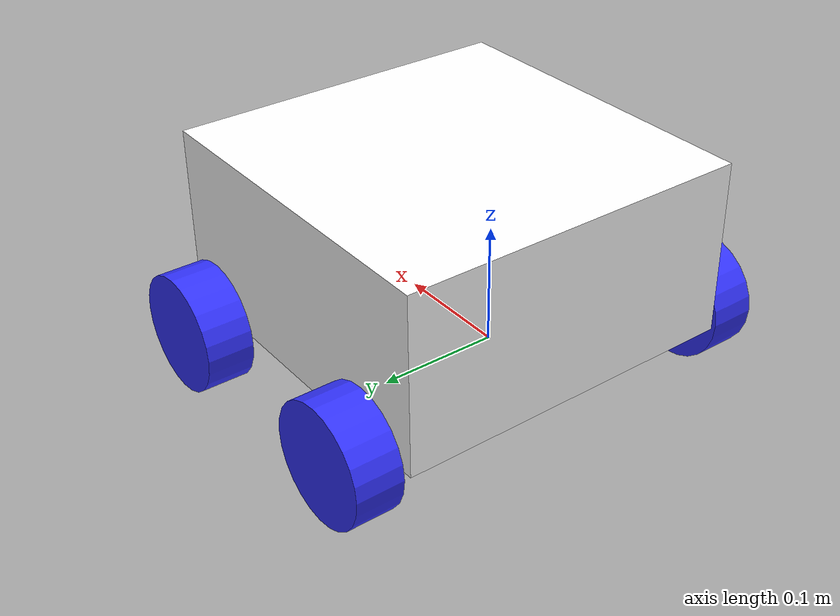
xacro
<?xml version="1.0"?>
<robot xmlns:xacro="http://www.ros.org/wiki/xacro" >

    <xacro:include filename="inertial_macros.xacro" />

    <material name="white">
        <color rgba="1 1 1 1" />
    </material>

    <material name="orange">
        <color rgba="1 0.3 0.1 1"/>
    </material>

    <material name="blue">
        <color rgba="0.2 0.2 1 1"/>
    </material>

    <material name="black">
        <color rgba="0 0 0 1"/>
    </material>

    <!--BASE LINK-->

    <link name="base_link">

    </link>

    <!--CHASSIS lINK-->

    <joint name="chassis_joint" type="fixed">
        <parent link="base_link"/>
        <child link="chassis"/>
        <origin xyz="-0.1 0 0"/>
    </joint>

    <link name="chassis">
        <visual>
            <origin xyz="0.15 0 0.075"/>
            <geometry>
                <box size="0.3 0.3 0.15"/>
            </geometry>
            <material name="white"/>
        </visual>
        <collision>
            <origin xyz="0.15 0 0.075"/>
            <geometry>
                <box size="0.3 0.3 0.15"/>
            </geometry>
        </collision>
        <xacro:inertial_box mass="0.5" x="0.3" y="0.3" z="0.15">
            <origin xyz="0.15 0 0.075" rpy="0 0 0"/>
        </xacro:inertial_box>
    </link>

    <!--LEFT WHEEL LINK-->
    <joint name="left_wheel_joint1" type="continuous">
        <parent link="base_link"/>
        <child link="left_wheel1"/>
        <origin xyz="-0.05 0.175 0" rpy="-${pi/2} 0 0"/>
        <axis xyz="0 0 1"/>
    </joint>

    <link name="left_wheel1">
        <visual>
            <geometry>
                <cylinder radius="0.05" length="0.04"/>
            </geometry>
            <material name="blue"/>
        </visual>
        <collision>
            <geometry>
                <cylinder radius="0.05" length="0.04"/>
            </geometry>
        </collision>
        <xacro:inertial_cylinder mass="0.1" length="0.04" radius="0.05">
            <origin xyz="0 0 0" rpy="0 0 0"/>
        </xacro:inertial_cylinder>
    </link>

        <!--RIGHT WHEEL LINK-->
    <joint name="right_wheel_joint1" type="continuous">
        <parent link="base_link"/>
        <child link="right_wheel1"/>
        <origin xyz="-0.05 -0.175 0" rpy="${pi/2} 0 0"/>
        <axis xyz="0 0 -1"/>
    </joint>

    <link name="right_wheel1">
        <visual>
            <geometry>
                <cylinder radius="0.05" length="0.04"/>
            </geometry>
            <material name="blue"/>
        </visual>
        <collision>
            <geometry>
                <cylinder radius="0.05" length="0.04"/>
            </geometry>
        </collision>
        <xacro:inertial_cylinder mass="0.1" length="0.04" radius="0.05">
            <origin xyz="0 0 0" rpy="0 0 0"/>
        </xacro:inertial_cylinder>
    </link>

    <!--2nd SET OF WHEEL LINKS-->

    <!--LEFT WHEEL LINK-->
    <joint name="left_wheel_joint2" type="continuous">
        <parent link="base_link"/>
        <child link="left_wheel2"/>
        <origin xyz="0.155 0.175 0" rpy="-${pi/2} 0 0"/>
        <axis xyz="0 0 1"/>
    </joint>

    <link name="left_wheel2">
        <visual>
            <geometry>
                <cylinder radius="0.05" length="0.04"/>
            </geometry>
            <material name="blue"/>
        </visual>
        <collision>
            <geometry>
                <cylinder radius="0.05" length="0.04"/>
            </geometry>
        </collision>
        <xacro:inertial_cylinder mass="0.1" length="0.04" radius="0.05">
            <origin xyz="0 0 0" rpy="0 0 0"/>
        </xacro:inertial_cylinder>
    </link>

        <!--RIGHT WHEEL LINK-->
    <joint name="right_wheel_joint2" type="continuous">
        <parent link="base_link"/>
        <child link="right_wheel2"/>
        <origin xyz="0.155 -0.175 0" rpy="${pi/2} 0 0"/>
        <axis xyz="0 0 -1"/>
    </joint>

    <link name="right_wheel2">
        <visual>
            <geometry>
                <cylinder radius="0.05" length="0.04"/>
            </geometry>
            <material name="blue"/>
        </visual>
        <collision>
            <geometry>
                <cylinder radius="0.05" length="0.04"/>
            </geometry>
        </collision>
        <xacro:inertial_cylinder mass="0.1" length="0.04" radius="0.05">
            <origin xyz="0 0 0" rpy="0 0 0"/>
        </xacro:inertial_cylinder>
    </link>
</robot>
